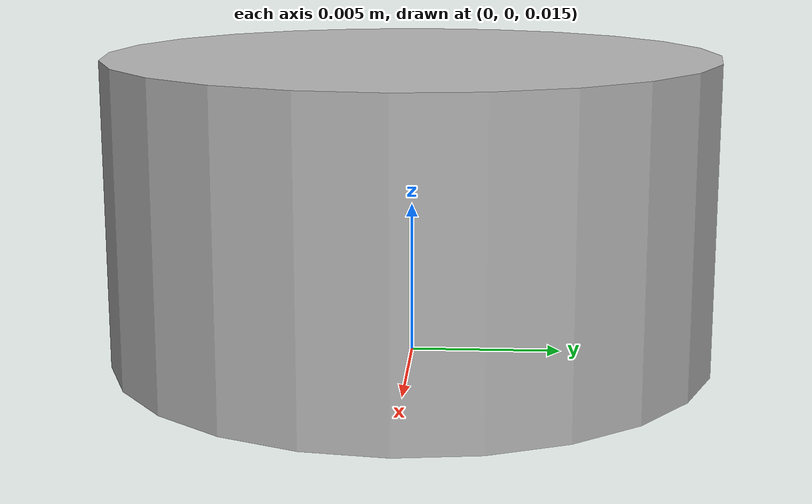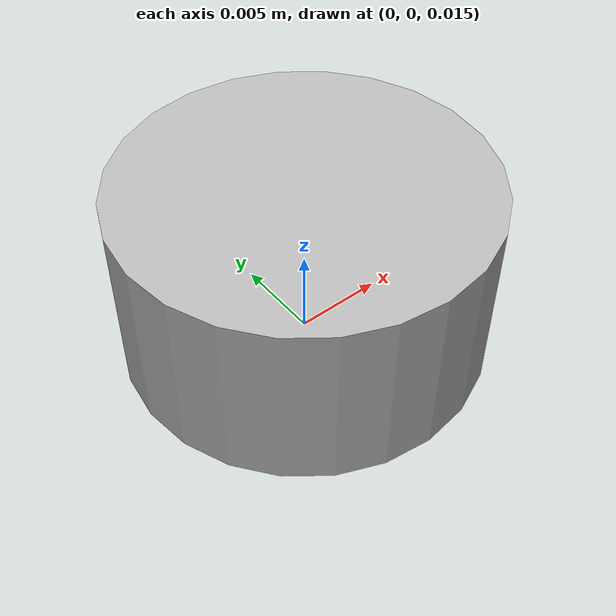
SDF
<?xml version='1.0'?>
<sdf version="1.6">
    <model name="lidar/0">
        <static>true</static>
        <link name="lidar_link">
            <pose>0.0 0 0.02 0 0 0</pose>
            <visual name="base_visual">
                <geometry>
                    <cylinder>
                        <radius>0.01</radius>
                        <length>0.01</length>
                    </cylinder>
                </geometry>
            </visual>

            <sensor type="ray" name="sensor">
                <pose>0 0 0.03 3.1415 0 0</pose>
                <visualize>false</visualize>
                <update_rate>10</update_rate>
                <ray>
                    <scan>
                        <vertical>
                            <samples>3</samples>
                            <resolution>1</resolution>
                            <min_angle>1.56079632679</min_angle>
                            <max_angle>1.58079632679</max_angle>
                        </vertical>
                        <horizontal>
                            <samples>1</samples>
                            <resolution>1</resolution>
                            <min_angle>0</min_angle>
                            <max_angle>-0.1</max_angle>
                        </horizontal>
                    </scan>
                    <range>
                        <min>-0.01</min>
                        <max>0.04</max>
                        <resolution>0.0001</resolution>
                    </range>
                </ray>
                <plugin name="lidar_control" filename="libsim_lidar_plugin.so">
                    <lidardatatopicName>/sensor/lidar</lidardatatopicName>
                    <topicName>/sensor/lidar/scan</topicName>
                    <frameName>laser</frameName>
                </plugin>
            </sensor>
        </link>
    </model>
</sdf>
